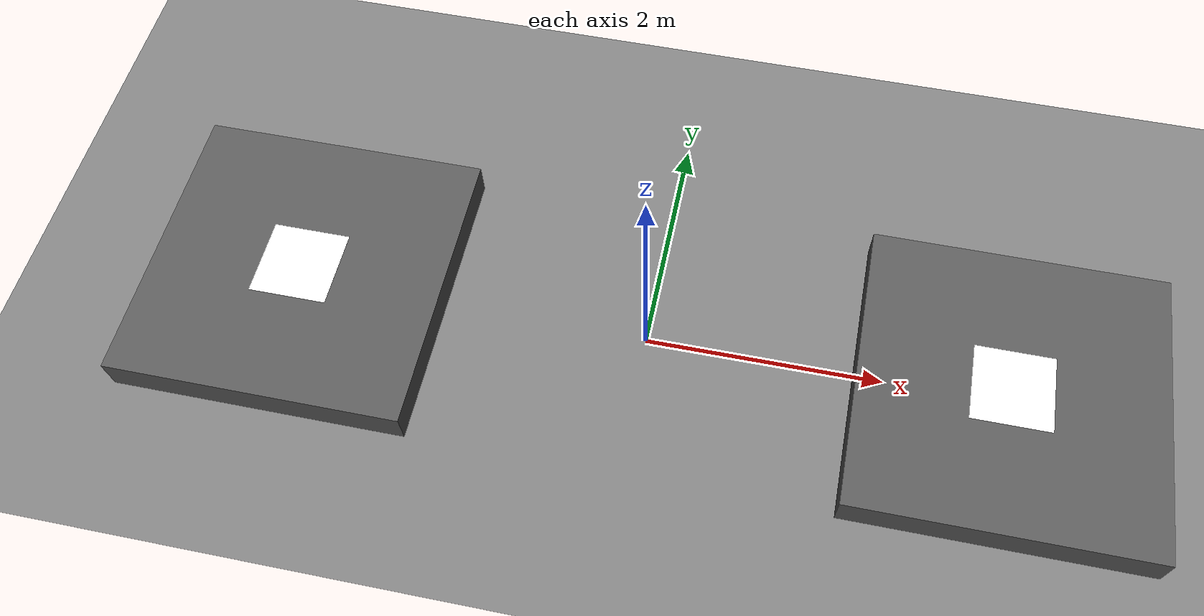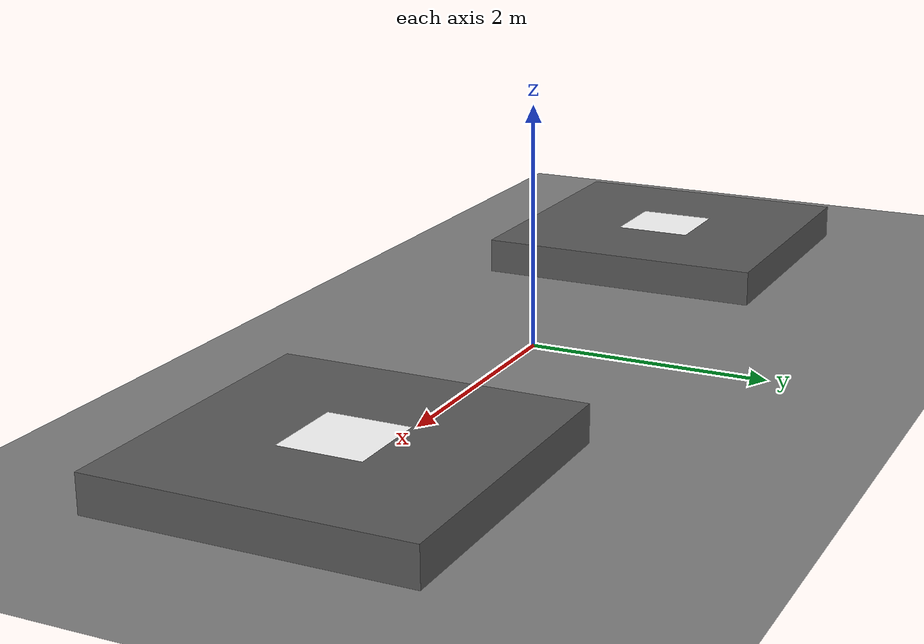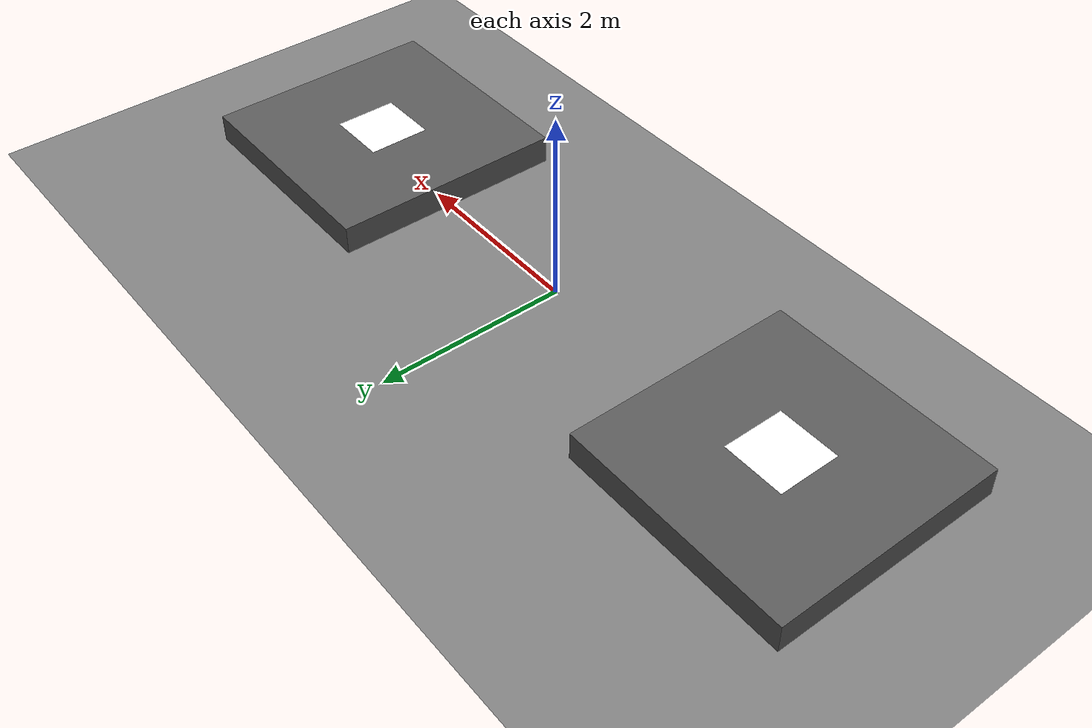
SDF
<?xml version='1.0' encoding='utf-8'?>
<sdf version="1.9">
  <world name="empty">
    <spherical_coordinates>
      <surface_model>EARTH_WGS84</surface_model>
      <latitude_deg>43.2389</latitude_deg>
      <longitude_deg>76.8897</longitude_deg>
      <elevation>800</elevation>
      <heading_deg>0</heading_deg>
    </spherical_coordinates>
    <physics name="default_physics" type="ignored">
      <max_step_size>0.001</max_step_size>
      <real_time_factor>1.0</real_time_factor>
      <real_time_update_rate>1000</real_time_update_rate>
      <magnetic_field>6.0e-6 2.3e-5 -4.2e-5</magnetic_field>
    </physics>
    <gravity>0 0 -9.80665</gravity>
    <plugin filename="gz-sim-physics-system" name="gz::sim::systems::Physics" />
    <plugin filename="gz-sim-user-commands-system" name="gz::sim::systems::UserCommands" />
    <plugin filename="gz-sim-scene-broadcaster-system" name="gz::sim::systems::SceneBroadcaster" />
    <plugin filename="gz-sim-imu-system" name="gz::sim::systems::Imu" />
    <plugin filename="gz-sim-air-pressure-system" name="gz::sim::systems::AirPressure" />
    <plugin filename="simdrone-magnetometer-system" name="gz::sim::systems::Magnetometer" />
    <plugin filename="gz-sim-sensors-system" name="gz::sim::systems::Sensors">
      <render_engine>ogre2</render_engine>
    </plugin>
    <plugin filename="simdrone-navsat-system" name="gz::sim::systems::NavSat" />
    <scene>
      <ambient>0.4 0.4 0.4 1</ambient>
      <background>0.7 0.8 1.0 1</background>
      <shadows>true</shadows>
    </scene>
    <light name="sun" type="directional">
      <cast_shadows>true</cast_shadows>
      <pose>0 0 10 0 0 0</pose>
      <diffuse>0.8 0.8 0.8 1</diffuse>
      <specular>0.2 0.2 0.2 1</specular>
      <direction>-0.5 0.1 -0.9</direction>
    </light>
    <model name="ground_plane">
      <static>true</static>
      <link name="link">
        <collision name="collision">
          <geometry>
            <plane>
              <normal>0 0 1</normal>
              <size>200 200</size>
            </plane>
          </geometry>
        </collision>
        <visual name="visual">
          <geometry>
            <plane>
              <normal>0 0 1</normal>
              <size>200 200</size>
            </plane>
          </geometry>
          <material>
            <ambient>0.3 0.3 0.3 1</ambient>
            <diffuse>0.5 0.5 0.5 1</diffuse>
          </material>
        </visual>
      </link>
    </model>
    <include>
      <uri>model://drone_pad</uri>
      <name>landing_pad_01</name>
      <pose>-3 0 0 0 0 0</pose>
    </include>
    <frame name="spawn_pad__landing_pad_01" attached_to="landing_pad_01">
      <pose relative_to="landing_pad_01">0 0 0.292 0 0 0</pose>
    </frame>
    <include>
      <uri>model://drone_pad</uri>
      <name>landing_pad_02</name>
      <pose>3 0 0 0 0 0</pose>
    </include>
    <frame name="spawn_pad__landing_pad_02" attached_to="landing_pad_02">
      <pose relative_to="landing_pad_02">0 0 0.292 0 0 0</pose>
    </frame>
  </world>
</sdf>

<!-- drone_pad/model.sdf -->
<sdf version="1.9">
  <model name="drone_pad">
    <static>true</static>
    <link name="platform">
      <collision name="platform_collision">
        <pose>0 0 0.15 0 0 0</pose>
        <geometry>
          <box>
            <size>2.5 2.5 0.3</size>
          </box>
        </geometry>
      </collision>
      <visual name="platform_body">
        <pose>0 0 0.15 0 0 0</pose>
        <geometry>
          <box>
            <size>2.5 2.5 0.3</size>
          </box>
        </geometry>
        <material>
          <ambient>0.35 0.35 0.35 1</ambient>
          <diffuse>0.35 0.35 0.35 1</diffuse>
          <specular>0 0 0 1</specular>
        </material>
      </visual>
      <visual name="marker_quiet_zone">
        <pose>0 0 0.3001 0 0 0</pose>
        <geometry>
          <plane>
            <normal>0 0 1</normal>
            <size>0.666666666667 0.666666666667</size>
          </plane>
        </geometry>
        <cast_shadows>false</cast_shadows>
        <material>
          <ambient>1 1 1 1</ambient>
          <diffuse>1 1 1 1</diffuse>
          <specular>0 0 0 1</specular>
        </material>
      </visual>
      <visual name="marker_r0_c0">
        <pose>-0.20833333333333331 0.20833333333333331 0.3002 0 0 0</pose>
        <geometry>
          <plane>
            <normal>0 0 1</normal>
            <size>0.0833333333333 0.0833333333333</size>
          </plane>
        </geometry>
        <cast_shadows>false</cast_shadows>
        <material>
          <ambient>0 0 0 1</ambient>
          <diffuse>0 0 0 1</diffuse>
          <specular>0 0 0 1</specular>
        </material>
      </visual>
      <visual name="marker_r0_c1">
        <pose>-0.125 0.20833333333333331 0.3002 0 0 0</pose>
        <geometry>
          <plane>
            <normal>0 0 1</normal>
            <size>0.0833333333333 0.0833333333333</size>
          </plane>
        </geometry>
        <cast_shadows>false</cast_shadows>
        <material>
          <ambient>0 0 0 1</ambient>
          <diffuse>0 0 0 1</diffuse>
          <specular>0 0 0 1</specular>
        </material>
      </visual>
      <visual name="marker_r0_c2">
        <pose>-0.041666666666666664 0.20833333333333331 0.3002 0 0 0</pose>
        <geometry>
          <plane>
            <normal>0 0 1</normal>
            <size>0.0833333333333 0.0833333333333</size>
          </plane>
        </geometry>
        <cast_shadows>false</cast_shadows>
        <material>
          <ambient>0 0 0 1</ambient>
          <diffuse>0 0 0 1</diffuse>
          <specular>0 0 0 1</specular>
        </material>
      </visual>
      <visual name="marker_r0_c3">
        <pose>0.041666666666666664 0.20833333333333331 0.3002 0 0 0</pose>
        <geometry>
          <plane>
            <normal>0 0 1</normal>
            <size>0.0833333333333 0.0833333333333</size>
          </plane>
        </geometry>
        <cast_shadows>false</cast_shadows>
        <material>
          <ambient>0 0 0 1</ambient>
          <diffuse>0 0 0 1</diffuse>
          <specular>0 0 0 1</specular>
        </material>
      </visual>
      <visual name="marker_r0_c4">
        <pose>0.125 0.20833333333333331 0.3002 0 0 0</pose>
        <geometry>
          <plane>
            <normal>0 0 1</normal>
            <size>0.0833333333333 0.0833333333333</size>
          </plane>
        </geometry>
        <cast_shadows>false</cast_shadows>
        <material>
          <ambient>0 0 0 1</ambient>
          <diffuse>0 0 0 1</diffuse>
          <specular>0 0 0 1</specular>
        </material>
      </visual>
      <visual name="marker_r0_c5">
        <pose>0.20833333333333331 0.20833333333333331 0.3002 0 0 0</pose>
        <geometry>
          <plane>
            <normal>0 0 1</normal>
            <size>0.0833333333333 0.0833333333333</size>
          </plane>
        </geometry>
        <cast_shadows>false</cast_shadows>
        <material>
          <ambient>0 0 0 1</ambient>
          <diffuse>0 0 0 1</diffuse>
          <specular>0 0 0 1</specular>
        </material>
      </visual>
      <visual name="marker_r1_c0">
        <pose>-0.20833333333333331 0.125 0.3002 0 0 0</pose>
        <geometry>
          <plane>
            <normal>0 0 1</normal>
            <size>0.0833333333333 0.0833333333333</size>
          </plane>
        </geometry>
        <cast_shadows>false</cast_shadows>
        <material>
          <ambient>0 0 0 1</ambient>
          <diffuse>0 0 0 1</diffuse>
          <specular>0 0 0 1</specular>
        </material>
      </visual>
      <visual name="marker_r1_c2">
        <pose>-0.041666666666666664 0.125 0.3002 0 0 0</pose>
        <geometry>
          <plane>
            <normal>0 0 1</normal>
            <size>0.0833333333333 0.0833333333333</size>
          </plane>
        </geometry>
        <cast_shadows>false</cast_shadows>
        <material>
          <ambient>0 0 0 1</ambient>
          <diffuse>0 0 0 1</diffuse>
          <specular>0 0 0 1</specular>
        </material>
      </visual>
      <visual name="marker_r1_c5">
        <pose>0.20833333333333331 0.125 0.3002 0 0 0</pose>
        <geometry>
          <plane>
            <normal>0 0 1</normal>
            <size>0.0833333333333 0.0833333333333</size>
          </plane>
        </geometry>
        <cast_shadows>false</cast_shadows>
        <material>
          <ambient>0 0 0 1</ambient>
          <diffuse>0 0 0 1</diffuse>
          <specular>0 0 0 1</specular>
        </material>
      </visual>
      <visual name="marker_r2_c0">
        <pose>-0.20833333333333331 0.041666666666666664 0.3002 0 0 0</pose>
        <geometry>
          <plane>
            <normal>0 0 1</normal>
            <size>0.0833333333333 0.0833333333333</size>
          </plane>
        </geometry>
        <cast_shadows>false</cast_shadows>
        <material>
          <ambient>0 0 0 1</ambient>
          <diffuse>0 0 0 1</diffuse>
          <specular>0 0 0 1</specular>
        </material>
      </visual>
      <visual name="marker_r2_c1">
        <pose>-0.125 0.041666666666666664 0.3002 0 0 0</pose>
        <geometry>
          <plane>
            <normal>0 0 1</normal>
            <size>0.0833333333333 0.0833333333333</size>
          </plane>
        </geometry>
        <cast_shadows>false</cast_shadows>
        <material>
          <ambient>0 0 0 1</ambient>
          <diffuse>0 0 0 1</diffuse>
          <specular>0 0 0 1</specular>
        </material>
      </visual>
      <visual name="marker_r2_c3">
        <pose>0.041666666666666664 0.041666666666666664 0.3002 0 0 0</pose>
        <geometry>
          <plane>
            <normal>0 0 1</normal>
            <size>0.0833333333333 0.0833333333333</size>
          </plane>
        </geometry>
        <cast_shadows>false</cast_shadows>
        <material>
          <ambient>0 0 0 1</ambient>
          <diffuse>0 0 0 1</diffuse>
          <specular>0 0 0 1</specular>
        </material>
      </visual>
      <visual name="marker_r2_c5">
        <pose>0.20833333333333331 0.041666666666666664 0.3002 0 0 0</pose>
        <geometry>
          <plane>
            <normal>0 0 1</normal>
            <size>0.0833333333333 0.0833333333333</size>
          </plane>
        </geometry>
        <cast_shadows>false</cast_shadows>
        <material>
          <ambient>0 0 0 1</ambient>
          <diffuse>0 0 0 1</diffuse>
          <specular>0 0 0 1</specular>
        </material>
      </visual>
      <visual name="marker_r3_c0">
        <pose>-0.20833333333333331 -0.041666666666666664 0.3002 0 0 0</pose>
        <geometry>
          <plane>
            <normal>0 0 1</normal>
            <size>0.0833333333333 0.0833333333333</size>
          </plane>
        </geometry>
        <cast_shadows>false</cast_shadows>
        <material>
          <ambient>0 0 0 1</ambient>
          <diffuse>0 0 0 1</diffuse>
          <specular>0 0 0 1</specular>
        </material>
      </visual>
      <visual name="marker_r3_c1">
        <pose>-0.125 -0.041666666666666664 0.3002 0 0 0</pose>
        <geometry>
          <plane>
            <normal>0 0 1</normal>
            <size>0.0833333333333 0.0833333333333</size>
          </plane>
        </geometry>
        <cast_shadows>false</cast_shadows>
        <material>
          <ambient>0 0 0 1</ambient>
          <diffuse>0 0 0 1</diffuse>
          <specular>0 0 0 1</specular>
        </material>
      </visual>
      <visual name="marker_r3_c2">
        <pose>-0.041666666666666664 -0.041666666666666664 0.3002 0 0 0</pose>
        <geometry>
          <plane>
            <normal>0 0 1</normal>
            <size>0.0833333333333 0.0833333333333</size>
          </plane>
        </geometry>
        <cast_shadows>false</cast_shadows>
        <material>
          <ambient>0 0 0 1</ambient>
          <diffuse>0 0 0 1</diffuse>
          <specular>0 0 0 1</specular>
        </material>
      </visual>
      <visual name="marker_r3_c5">
        <pose>0.20833333333333331 -0.041666666666666664 0.3002 0 0 0</pose>
        <geometry>
          <plane>
            <normal>0 0 1</normal>
            <size>0.0833333333333 0.0833333333333</size>
          </plane>
        </geometry>
        <cast_shadows>false</cast_shadows>
        <material>
          <ambient>0 0 0 1</ambient>
          <diffuse>0 0 0 1</diffuse>
          <specular>0 0 0 1</specular>
        </material>
      </visual>
      <visual name="marker_r4_c0">
        <pose>-0.20833333333333331 -0.125 0.3002 0 0 0</pose>
        <geometry>
          <plane>
            <normal>0 0 1</normal>
            <size>0.0833333333333 0.0833333333333</size>
          </plane>
        </geometry>
        <cast_shadows>false</cast_shadows>
        <material>
          <ambient>0 0 0 1</ambient>
          <diffuse>0 0 0 1</diffuse>
          <specular>0 0 0 1</specular>
        </material>
      </visual>
      <visual name="marker_r4_c1">
        <pose>-0.125 -0.125 0.3002 0 0 0</pose>
        <geometry>
          <plane>
            <normal>0 0 1</normal>
            <size>0.0833333333333 0.0833333333333</size>
          </plane>
        </geometry>
        <cast_shadows>false</cast_shadows>
        <material>
          <ambient>0 0 0 1</ambient>
          <diffuse>0 0 0 1</diffuse>
          <specular>0 0 0 1</specular>
        </material>
      </visual>
      <visual name="marker_r4_c2">
        <pose>-0.041666666666666664 -0.125 0.3002 0 0 0</pose>
        <geometry>
          <plane>
            <normal>0 0 1</normal>
            <size>0.0833333333333 0.0833333333333</size>
          </plane>
        </geometry>
        <cast_shadows>false</cast_shadows>
        <material>
          <ambient>0 0 0 1</ambient>
          <diffuse>0 0 0 1</diffuse>
          <specular>0 0 0 1</specular>
        </material>
      </visual>
      <visual name="marker_r4_c4">
        <pose>0.125 -0.125 0.3002 0 0 0</pose>
        <geometry>
          <plane>
            <normal>0 0 1</normal>
            <size>0.0833333333333 0.0833333333333</size>
          </plane>
        </geometry>
        <cast_shadows>false</cast_shadows>
        <material>
          <ambient>0 0 0 1</ambient>
          <diffuse>0 0 0 1</diffuse>
          <specular>0 0 0 1</specular>
        </material>
      </visual>
      <visual name="marker_r4_c5">
        <pose>0.20833333333333331 -0.125 0.3002 0 0 0</pose>
        <geometry>
          <plane>
            <normal>0 0 1</normal>
            <size>0.0833333333333 0.0833333333333</size>
          </plane>
        </geometry>
        <cast_shadows>false</cast_shadows>
        <material>
          <ambient>0 0 0 1</ambient>
          <diffuse>0 0 0 1</diffuse>
          <specular>0 0 0 1</specular>
        </material>
      </visual>
      <visual name="marker_r5_c0">
        <pose>-0.20833333333333331 -0.20833333333333331 0.3002 0 0 0</pose>
        <geometry>
          <plane>
            <normal>0 0 1</normal>
            <size>0.0833333333333 0.0833333333333</size>
          </plane>
        </geometry>
        <cast_shadows>false</cast_shadows>
        <material>
          <ambient>0 0 0 1</ambient>
          <diffuse>0 0 0 1</diffuse>
          <specular>0 0 0 1</specular>
        </material>
      </visual>
      <visual name="marker_r5_c1">
        <pose>-0.125 -0.20833333333333331 0.3002 0 0 0</pose>
        <geometry>
          <plane>
            <normal>0 0 1</normal>
            <size>0.0833333333333 0.0833333333333</size>
          </plane>
        </geometry>
        <cast_shadows>false</cast_shadows>
        <material>
          <ambient>0 0 0 1</ambient>
          <diffuse>0 0 0 1</diffuse>
          <specular>0 0 0 1</specular>
        </material>
      </visual>
      <visual name="marker_r5_c2">
        <pose>-0.041666666666666664 -0.20833333333333331 0.3002 0 0 0</pose>
        <geometry>
          <plane>
            <normal>0 0 1</normal>
            <size>0.0833333333333 0.0833333333333</size>
          </plane>
        </geometry>
        <cast_shadows>false</cast_shadows>
        <material>
          <ambient>0 0 0 1</ambient>
          <diffuse>0 0 0 1</diffuse>
          <specular>0 0 0 1</specular>
        </material>
      </visual>
      <visual name="marker_r5_c3">
        <pose>0.041666666666666664 -0.20833333333333331 0.3002 0 0 0</pose>
        <geometry>
          <plane>
            <normal>0 0 1</normal>
            <size>0.0833333333333 0.0833333333333</size>
          </plane>
        </geometry>
        <cast_shadows>false</cast_shadows>
        <material>
          <ambient>0 0 0 1</ambient>
          <diffuse>0 0 0 1</diffuse>
          <specular>0 0 0 1</specular>
        </material>
      </visual>
      <visual name="marker_r5_c4">
        <pose>0.125 -0.20833333333333331 0.3002 0 0 0</pose>
        <geometry>
          <plane>
            <normal>0 0 1</normal>
            <size>0.0833333333333 0.0833333333333</size>
          </plane>
        </geometry>
        <cast_shadows>false</cast_shadows>
        <material>
          <ambient>0 0 0 1</ambient>
          <diffuse>0 0 0 1</diffuse>
          <specular>0 0 0 1</specular>
        </material>
      </visual>
      <visual name="marker_r5_c5">
        <pose>0.20833333333333331 -0.20833333333333331 0.3002 0 0 0</pose>
        <geometry>
          <plane>
            <normal>0 0 1</normal>
            <size>0.0833333333333 0.0833333333333</size>
          </plane>
        </geometry>
        <cast_shadows>false</cast_shadows>
        <material>
          <ambient>0 0 0 1</ambient>
          <diffuse>0 0 0 1</diffuse>
          <specular>0 0 0 1</specular>
        </material>
      </visual>
    </link>
  </model>
</sdf>
